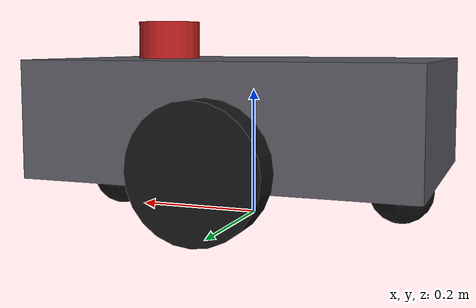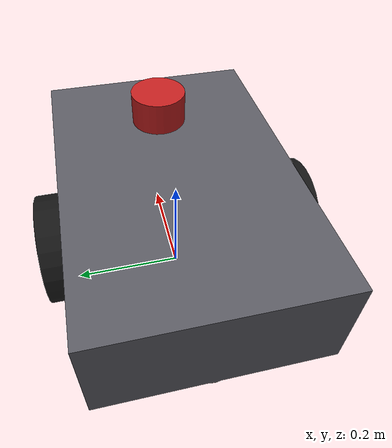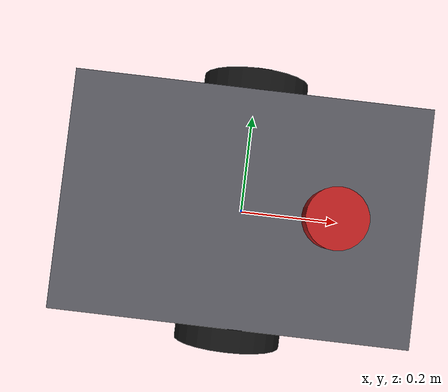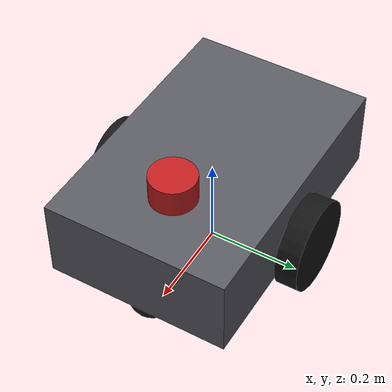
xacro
<?xml version="1.0"?>
<robot xmlns:xacro="http://www.ros.org/wiki/xacro" name="omokai_bot">

  <!-- ═══════════════════════ Properties ═══════════════════════ -->
  <xacro:property name="chassis_length"  value="0.60"/>
  <xacro:property name="chassis_width"   value="0.40"/>
  <xacro:property name="chassis_height"  value="0.18"/>
  <xacro:property name="chassis_mass"    value="10.0"/>
  <xacro:property name="chassis_z"       value="0.16"/>   <!-- base_link above ground -->

  <xacro:property name="wheel_radius"    value="0.10"/>
  <xacro:property name="wheel_width"     value="0.05"/>
  <xacro:property name="wheel_mass"      value="1.0"/>
  <xacro:property name="wheel_y"         value="0.225"/>  <!-- half track width -->

  <xacro:property name="caster_radius"   value="0.05"/>
  <xacro:property name="caster_mass"     value="0.3"/>
  <xacro:property name="caster_x"        value="0.24"/>   <!-- fore/aft from centre -->

  <xacro:property name="lidar_radius"    value="0.05"/>
  <xacro:property name="lidar_height"    value="0.06"/>
  <xacro:property name="lidar_mass"      value="0.2"/>

  <material name="body_grey"><color rgba="0.35 0.35 0.38 1.0"/></material>
  <material name="wheel_black"><color rgba="0.08 0.08 0.08 1.0"/></material>
  <material name="lidar_red"><color rgba="0.75 0.12 0.12 1.0"/></material>

  <!-- ═══════════════════════ base_footprint / base_link ═══════════════════════ -->
  <link name="base_footprint"/>

  <joint name="base_joint" type="fixed">
    <parent link="base_footprint"/>
    <child link="base_link"/>
    <origin xyz="0 0 ${chassis_z}" rpy="0 0 0"/>
  </joint>

  <link name="base_link">
    <visual>
      <geometry><box size="${chassis_length} ${chassis_width} ${chassis_height}"/></geometry>
      <material name="body_grey"/>
    </visual>
    <collision>
      <geometry><box size="${chassis_length} ${chassis_width} ${chassis_height}"/></geometry>
    </collision>
    <inertial>
      <mass value="${chassis_mass}"/>
      <inertia
        ixx="${chassis_mass/12.0*(chassis_width*chassis_width+chassis_height*chassis_height)}"
        iyy="${chassis_mass/12.0*(chassis_length*chassis_length+chassis_height*chassis_height)}"
        izz="${chassis_mass/12.0*(chassis_length*chassis_length+chassis_width*chassis_width)}"
        ixy="0" ixz="0" iyz="0"/>
    </inertial>
  </link>

  <xacro:macro name="wheel" params="prefix x y">
    <link name="${prefix}_wheel_link">
      <visual>
        <origin xyz="0 0 0" rpy="${pi/2} 0 0"/>
        <geometry><cylinder radius="${wheel_radius}" length="${wheel_width}"/></geometry>
        <material name="wheel_black"/>
      </visual>
      <collision>
        <origin xyz="0 0 0" rpy="${pi/2} 0 0"/>
        <geometry><cylinder radius="${wheel_radius}" length="${wheel_width}"/></geometry>
      </collision>
      <inertial>
        <mass value="${wheel_mass}"/>
        <inertia
          ixx="${wheel_mass/12.0*(3*wheel_radius*wheel_radius+wheel_width*wheel_width)}"
          iyy="${wheel_mass/12.0*(3*wheel_radius*wheel_radius+wheel_width*wheel_width)}"
          izz="${wheel_mass/2.0*wheel_radius*wheel_radius}"
          ixy="0" ixz="0" iyz="0"/>
      </inertial>
    </link>

    <joint name="${prefix}_wheel_joint" type="continuous">
      <parent link="base_link"/>
      <child link="${prefix}_wheel_link"/>
      <origin xyz="${x} ${y} ${wheel_radius - chassis_z}" rpy="0 0 0"/>
      <axis xyz="0 1 0"/>
    </joint>

    <!-- Grippy in all directions: drive wheels must not slide laterally,
         and with casters there is no scrub during rotation to allow for. -->
    <gazebo reference="${prefix}_wheel_link">
      <mu1>1.5</mu1>
      <mu2>1.5</mu2>
    </gazebo>
  </xacro:macro>

  <xacro:wheel prefix="left"  x="0" y="${wheel_y}"/>
  <xacro:wheel prefix="right" x="0" y="${-wheel_y}"/>

  <!-- ═══════════════════════ Casters (2x, passive) ═══════════════════════ -->
  <xacro:macro name="caster" params="prefix x">
    <link name="${prefix}_caster_link">
      <visual>
        <geometry><sphere radius="${caster_radius}"/></geometry>
        <material name="wheel_black"/>
      </visual>
      <collision>
        <geometry><sphere radius="${caster_radius}"/></geometry>
      </collision>
      <inertial>
        <mass value="${caster_mass}"/>
        <inertia
          ixx="${2.0/5.0*caster_mass*caster_radius*caster_radius}"
          iyy="${2.0/5.0*caster_mass*caster_radius*caster_radius}"
          izz="${2.0/5.0*caster_mass*caster_radius*caster_radius}"
          ixy="0" ixz="0" iyz="0"/>
      </inertial>
    </link>

    <joint name="${prefix}_caster_joint" type="fixed">
      <parent link="base_link"/>
      <child link="${prefix}_caster_link"/>
      <origin xyz="${x} 0 ${caster_radius - chassis_z}" rpy="0 0 0"/>
    </joint>

    <!-- Nearly frictionless: the sphere slides instead of rolling, acting as
         an ideal caster without needing a swivel joint. -->
    <gazebo reference="${prefix}_caster_link">
      <mu1>0.01</mu1>
      <mu2>0.01</mu2>
    </gazebo>
  </xacro:macro>

  <xacro:caster prefix="front" x="${caster_x}"/>
  <xacro:caster prefix="rear"  x="${-caster_x}"/>

  <!-- ═══════════════════════ 2D Lidar ═══════════════════════ -->
  <link name="lidar_link">
    <visual>
      <geometry><cylinder radius="${lidar_radius}" length="${lidar_height}"/></geometry>
      <material name="lidar_red"/>
    </visual>
    <collision>
      <geometry><cylinder radius="${lidar_radius}" length="${lidar_height}"/></geometry>
    </collision>
    <inertial>
      <mass value="${lidar_mass}"/>
      <inertia
        ixx="${lidar_mass/12.0*(3*lidar_radius*lidar_radius+lidar_height*lidar_height)}"
        iyy="${lidar_mass/12.0*(3*lidar_radius*lidar_radius+lidar_height*lidar_height)}"
        izz="${lidar_mass/2.0*lidar_radius*lidar_radius}"
        ixy="0" ixz="0" iyz="0"/>
    </inertial>
  </link>

  <joint name="lidar_joint" type="fixed">
    <parent link="base_link"/>
    <child link="lidar_link"/>
    <origin xyz="0.15 0 ${chassis_height/2 + lidar_height/2}" rpy="0 0 0"/>
  </joint>

  <!-- ═══════════════════════ Ignition Gazebo plugins ═══════════════════════ -->
  <xacro:include filename="$(find slam_omokai)/urdf/ign_plugins.xacro"/>

</robot>
